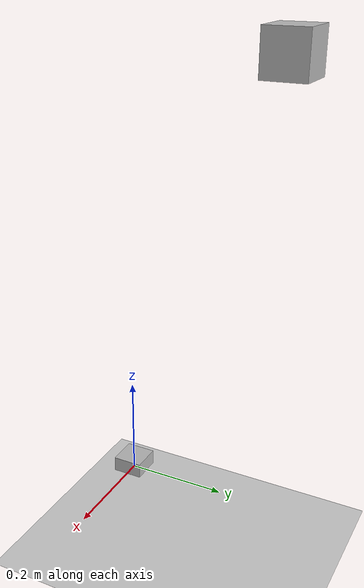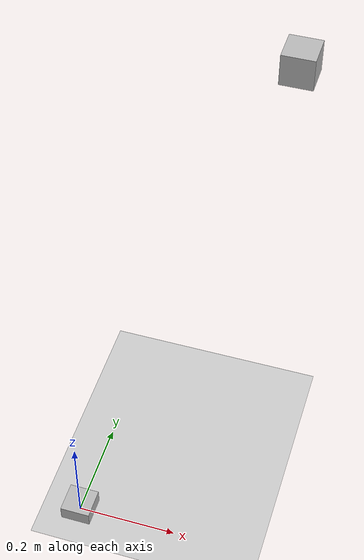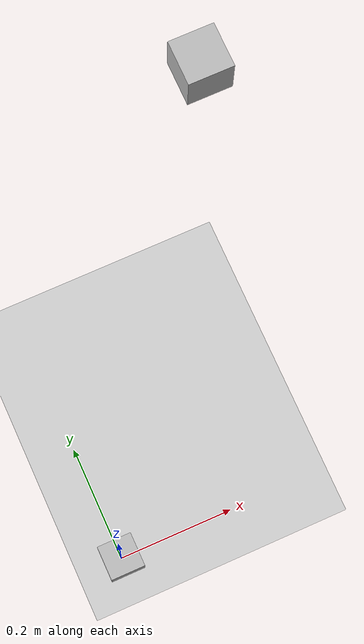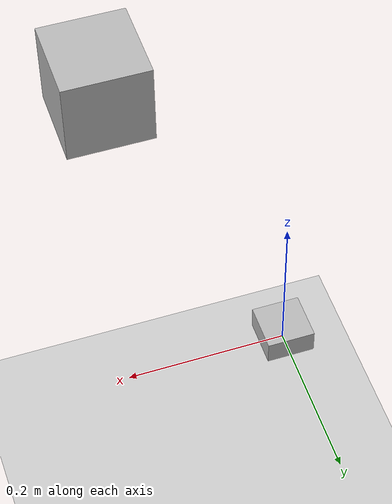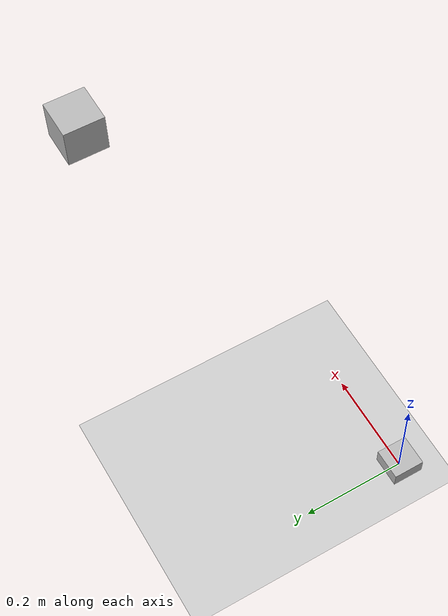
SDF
<?xml version="1.0" ?>
<sdf version="1.4">
  <world name="default">
    <physics type="ode">
      <gravity>0 0 -9.81</gravity>
      <ode>
        <solver>
          <type>quick</type>
          <iters>20</iters>
          <sor>1.0</sor>
        </solver>
        <constraints>
          <cfm>0.0</cfm>
          <erp>0.2</erp>
          <contact_max_correcting_vel>100.0</contact_max_correcting_vel>
          <contact_surface_layer>0.0</contact_surface_layer>
        </constraints>
      </ode>
      <real_time_update_rate>1000</real_time_update_rate>
      <max_step_size>0.001</max_step_size>
    </physics>
    <light type="directional" name="light1">
      <cast_shadows>true</cast_shadows>
      <pose>-2 0 4 0 0 0</pose>
      <diffuse>1.0 1.0 1.0 1</diffuse>
      <specular>0.1 0.1 0.1 1</specular>
      <attenuation>
        <range>20</range>
        <constant>0.9</constant>
        <linear>0.01</linear>
        <quadratic>0.001</quadratic>
      </attenuation>
      <direction>0.2 0.0 -1.0</direction>
    </light>
    <!-- A ground plane -->
    <include>
      <uri>model://ground_plane</uri>
    </include>

    <!-- Cube with ArUco markers on the sides -->
    <include>
      <uri>model://green_cube</uri>
      <pose>0.3 0.4 0.9 0 0 0</pose>
    </include>

    <include>
      <uri>model://red_cube</uri>
      <pose>0 0 0 0 0 0</pose>
    </include>

  </world>
</sdf>

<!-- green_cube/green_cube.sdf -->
<sdf version='1.4'>
  <model name="green_cube">
      <static>0</static>
      <link name='link'>
        <inertial>
          <mass>1.0</mass>
          <inertia>
            <ixx>0.000041667</ixx>
            <ixy>0.000000</ixy>
            <ixz>0.000000</ixz>
            <iyy>0.000041667</iyy>
            <iyz>0.000000</iyz>
            <izz>0.000041667</izz>
          </inertia>
        </inertial>

        <collision name='collision'>
         <pose>0 0 0 0 0 0</pose>
          <geometry>
            <box>
              <size>0.06 0.06 0.06</size>
            </box>
          </geometry>
          <surface>
            <friction>
              <ode>
                <mu>0.5</mu>
                <mu2>0.5</mu2>
              </ode>
            </friction>
            <contact>
              <ode>
                <kp>1000000.0</kp>
                <kd>1.0</kd>
                <max_vel>1.0</max_vel>
                <min_depth>0.0025</min_depth>
              </ode>
            </contact>
          </surface>
        </collision>

        <visual name='visual'>
         <pose>0 0 0 0 0 0</pose>
          <geometry>
          <mesh>
            <uri>model://green_cube/meshes/cube_6cm.dae</uri>
	    <scale> 1 1 1 </scale>
          </mesh>
          </geometry>
        </visual>

        <velocity_decay>
          <linear>0.000000</linear>
          <angular>0.000000</angular>
        </velocity_decay>
        <self_collide>0</self_collide>
        <kinematic>0</kinematic>
        <gravity>1</gravity>
      </link>
  </model>
</sdf>

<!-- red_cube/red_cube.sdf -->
<sdf version='1.4'>
  <model name="red_cube">
      <static>0</static>
      <link name='link'>
        <inertial>
          <mass>1.0</mass>
          <inertia>
            <ixx>0.000041667</ixx>
            <ixy>0.000000</ixy>
            <ixz>0.000000</ixz>
            <iyy>0.000041667</iyy>
            <iyz>0.000000</iyz>
            <izz>0.000041667</izz>
          </inertia>
        </inertial>

        <visual name='visual'>
          <geometry>
          <mesh>
            <uri>model://red_cube/meshes/cube_6cm1.dae</uri>
	    <scale> 1 1 1 </scale>
          </mesh>
          </geometry>
        </visual>

        <collision name='collision'>

          <geometry>
            <box>
              <size>0.06 0.06 0.06</size>
            </box>
          </geometry>

          <surface>
            <friction>
              <ode>
                <mu>0.5</mu>
                <mu2>0.5</mu2>
              </ode>
            </friction>
            <contact>
              <ode>
                <kp>1000000.0</kp>
                <kd>1.0</kd>
                <max_vel>1.0</max_vel>
                <min_depth>0.0025</min_depth>
              </ode>
            </contact>
          </surface>
        </collision>

        <velocity_decay>
          <linear>0.000000</linear>
          <angular>0.000000</angular>
        </velocity_decay>
        <self_collide>0</self_collide>
        <kinematic>0</kinematic>
        <gravity>1</gravity>
      </link>
  </model>
</sdf>
